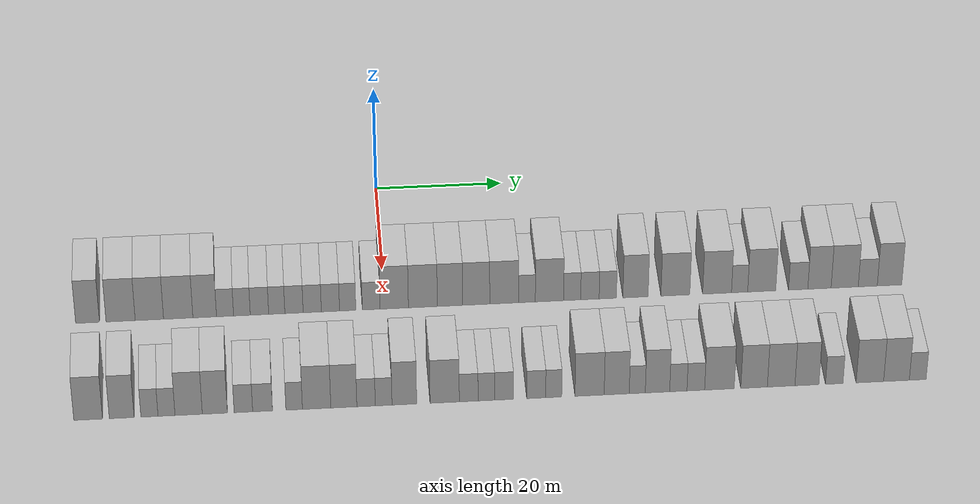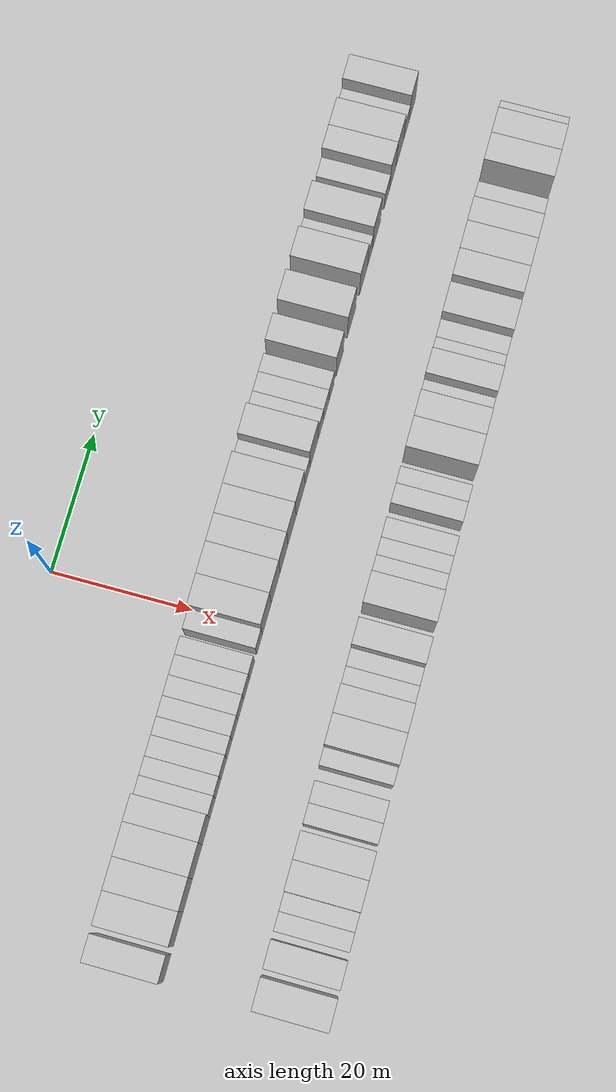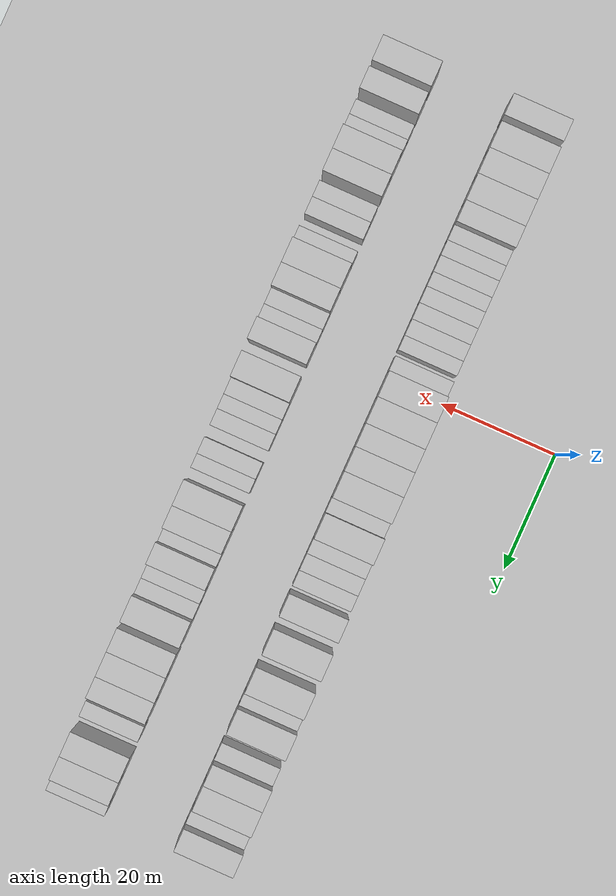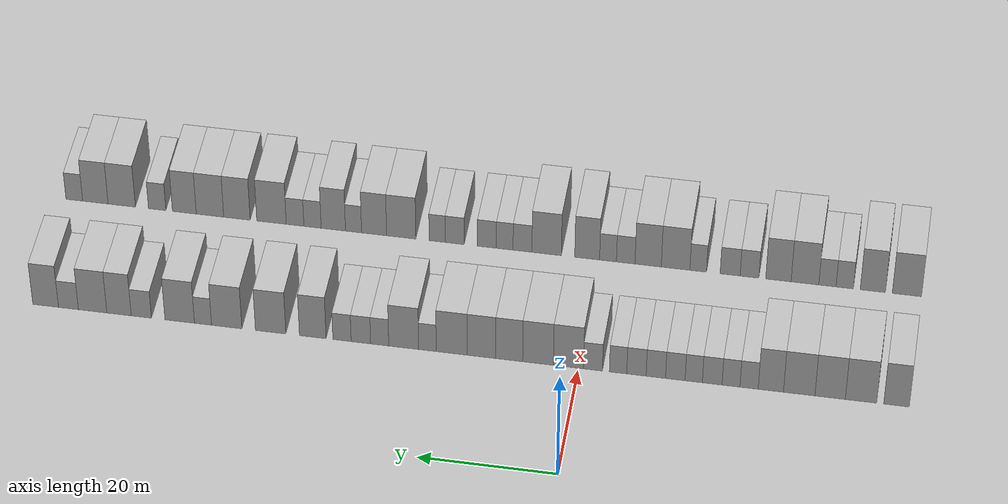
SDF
<sdf version="1.6">
 <world name="default">
  <include><name>ground_plane_1</name><uri>model://HANNAS_ground_plane</uri></include>
  <include>
   <name>ground_plane_2</name>
   <uri>model://HANNAS_ground_plane</uri>
   <pose>100 0 0  0 0 0</pose>
  </include>
  <model name="building_33">
   <static>1</static>
   <pose>25.0000 -45.6298 0 0.000000 0.000000 0.000000</pose>
   <link name="link">
    <pose>0 0 4.50 0 0 0</pose>
    <collision name="collision"><geometry><box><size>10.0000 3.6348 9.0000</size></box></geometry></collision>
    <visual name="visual">
     <cast_shadows>0</cast_shadows>
     <geometry><box><size>10.0000 3.6348 9.0000</size></box></geometry>
     <material>
      <script>
       <uri>model://HANNAS_wall/materials/scripts</uri>
       <uri>model://HANNAS_wall/materials/textures</uri>
       <name>vrc/HANNAS_wall</name>
      </script>
     </material>
    </visual>
   </link>
  </model>
  <model name="building_34">
   <static>1</static>
   <pose>25.0000 -40.5821 0 0.000000 0.000000 0.000000</pose>
   <link name="link">
    <pose>0 0 4.50 0 0 0</pose>
    <collision name="collision"><geometry><box><size>10.0000 4.4606 9.0000</size></box></geometry></collision>
    <visual name="visual">
     <cast_shadows>0</cast_shadows>
     <geometry><box><size>10.0000 4.4606 9.0000</size></box></geometry>
     <material>
      <script>
       <uri>model://HANNAS_wall/materials/scripts</uri>
       <uri>model://HANNAS_wall/materials/textures</uri>
       <name>vrc/HANNAS_wall</name>
      </script>
     </material>
    </visual>
   </link>
  </model>
  <model name="building_35">
   <static>1</static>
   <pose>25.0000 -36.1830 0 0.000000 0.000000 0.000000</pose>
   <link name="link">
    <pose>0 0 4.50 0 0 0</pose>
    <collision name="collision"><geometry><box><size>10.0000 4.3375 9.0000</size></box></geometry></collision>
    <visual name="visual">
     <cast_shadows>0</cast_shadows>
     <geometry><box><size>10.0000 4.3375 9.0000</size></box></geometry>
     <material>
      <script>
       <uri>model://HANNAS_wall/materials/scripts</uri>
       <uri>model://HANNAS_wall/materials/textures</uri>
       <name>vrc/HANNAS_wall</name>
      </script>
     </material>
    </visual>
   </link>
  </model>
  <model name="building_36">
   <static>1</static>
   <pose>25.0000 -31.7675 0 0.000000 0.000000 0.000000</pose>
   <link name="link">
    <pose>0 0 4.50 0 0 0</pose>
    <collision name="collision"><geometry><box><size>10.0000 4.4934 9.0000</size></box></geometry></collision>
    <visual name="visual">
     <cast_shadows>0</cast_shadows>
     <geometry><box><size>10.0000 4.4934 9.0000</size></box></geometry>
     <material>
      <script>
       <uri>model://HANNAS_wall/materials/scripts</uri>
       <uri>model://HANNAS_wall/materials/textures</uri>
       <name>vrc/HANNAS_wall</name>
      </script>
     </material>
    </visual>
   </link>
  </model>
  <model name="building_37">
   <static>1</static>
   <pose>25.0000 -27.7102 0 0.000000 0.000000 0.000000</pose>
   <link name="link">
    <pose>0 0 4.50 0 0 0</pose>
    <collision name="collision"><geometry><box><size>10.0000 3.6212 9.0000</size></box></geometry></collision>
    <visual name="visual">
     <cast_shadows>0</cast_shadows>
     <geometry><box><size>10.0000 3.6212 9.0000</size></box></geometry>
     <material>
      <script>
       <uri>model://HANNAS_wall/materials/scripts</uri>
       <uri>model://HANNAS_wall/materials/textures</uri>
       <name>vrc/HANNAS_wall</name>
      </script>
     </material>
    </visual>
   </link>
  </model>
  <model name="building_38">
   <static>1</static>
   <pose>25.0000 -24.5940 0 0.000000 0.000000 0.000000</pose>
   <link name="link">
    <pose>0 0 3.00 0 0 0</pose>
    <collision name="collision"><geometry><box><size>10.0000 2.6112 6.0000</size></box></geometry></collision>
    <visual name="visual">
     <cast_shadows>0</cast_shadows>
     <geometry><box><size>10.0000 2.6112 6.0000</size></box></geometry>
     <material>
      <script>
       <uri>model://HANNAS_wall/materials/scripts</uri>
       <uri>model://HANNAS_wall/materials/textures</uri>
       <name>vrc/HANNAS_wall</name>
      </script>
     </material>
    </visual>
   </link>
  </model>
  <model name="building_39">
   <static>1</static>
   <pose>25.0000 -22.0062 0 0.000000 0.000000 0.000000</pose>
   <link name="link">
    <pose>0 0 3.00 0 0 0</pose>
    <collision name="collision"><geometry><box><size>10.0000 2.5643 6.0000</size></box></geometry></collision>
    <visual name="visual">
     <cast_shadows>0</cast_shadows>
     <geometry><box><size>10.0000 2.5643 6.0000</size></box></geometry>
     <material>
      <script>
       <uri>model://HANNAS_wall/materials/scripts</uri>
       <uri>model://HANNAS_wall/materials/textures</uri>
       <name>vrc/HANNAS_wall</name>
      </script>
     </material>
    </visual>
   </link>
  </model>
  <model name="building_40">
   <static>1</static>
   <pose>25.0000 -19.3126 0 0.000000 0.000000 0.000000</pose>
   <link name="link">
    <pose>0 0 3.00 0 0 0</pose>
    <collision name="collision"><geometry><box><size>10.0000 2.8229 6.0000</size></box></geometry></collision>
    <visual name="visual">
     <cast_shadows>0</cast_shadows>
     <geometry><box><size>10.0000 2.8229 6.0000</size></box></geometry>
     <material>
      <script>
       <uri>model://HANNAS_wall/materials/scripts</uri>
       <uri>model://HANNAS_wall/materials/textures</uri>
       <name>vrc/HANNAS_wall</name>
      </script>
     </material>
    </visual>
   </link>
  </model>
  <model name="building_41">
   <static>1</static>
   <pose>25.0000 -16.6580 0 0.000000 0.000000 0.000000</pose>
   <link name="link">
    <pose>0 0 3.00 0 0 0</pose>
    <collision name="collision"><geometry><box><size>10.0000 2.4863 6.0000</size></box></geometry></collision>
    <visual name="visual">
     <cast_shadows>0</cast_shadows>
     <geometry><box><size>10.0000 2.4863 6.0000</size></box></geometry>
     <material>
      <script>
       <uri>model://HANNAS_wall/materials/scripts</uri>
       <uri>model://HANNAS_wall/materials/textures</uri>
       <name>vrc/HANNAS_wall</name>
      </script>
     </material>
    </visual>
   </link>
  </model>
  <model name="building_42">
   <static>1</static>
   <pose>25.0000 -14.0102 0 0.000000 0.000000 0.000000</pose>
   <link name="link">
    <pose>0 0 3.00 0 0 0</pose>
    <collision name="collision"><geometry><box><size>10.0000 2.8092 6.0000</size></box></geometry></collision>
    <visual name="visual">
     <cast_shadows>0</cast_shadows>
     <geometry><box><size>10.0000 2.8092 6.0000</size></box></geometry>
     <material>
      <script>
       <uri>model://HANNAS_wall/materials/scripts</uri>
       <uri>model://HANNAS_wall/materials/textures</uri>
       <name>vrc/HANNAS_wall</name>
      </script>
     </material>
    </visual>
   </link>
  </model>
  <model name="building_43">
   <static>1</static>
   <pose>25.0000 -11.2068 0 0.000000 0.000000 0.000000</pose>
   <link name="link">
    <pose>0 0 3.00 0 0 0</pose>
    <collision name="collision"><geometry><box><size>10.0000 2.7976 6.0000</size></box></geometry></collision>
    <visual name="visual">
     <cast_shadows>0</cast_shadows>
     <geometry><box><size>10.0000 2.7976 6.0000</size></box></geometry>
     <material>
      <script>
       <uri>model://HANNAS_wall/materials/scripts</uri>
       <uri>model://HANNAS_wall/materials/textures</uri>
       <name>vrc/HANNAS_wall</name>
      </script>
     </material>
    </visual>
   </link>
  </model>
  <model name="building_44">
   <static>1</static>
   <pose>25.0000 -8.4107 0 0.000000 0.000000 0.000000</pose>
   <link name="link">
    <pose>0 0 3.00 0 0 0</pose>
    <collision name="collision"><geometry><box><size>10.0000 2.7947 6.0000</size></box></geometry></collision>
    <visual name="visual">
     <cast_shadows>0</cast_shadows>
     <geometry><box><size>10.0000 2.7947 6.0000</size></box></geometry>
     <material>
      <script>
       <uri>model://HANNAS_wall/materials/scripts</uri>
       <uri>model://HANNAS_wall/materials/textures</uri>
       <name>vrc/HANNAS_wall</name>
      </script>
     </material>
    </visual>
   </link>
  </model>
  <model name="building_45">
   <static>1</static>
   <pose>25.0000 -5.7582 0 0.000000 0.000000 0.000000</pose>
   <link name="link">
    <pose>0 0 3.00 0 0 0</pose>
    <collision name="collision"><geometry><box><size>10.0000 2.5102 6.0000</size></box></geometry></collision>
    <visual name="visual">
     <cast_shadows>0</cast_shadows>
     <geometry><box><size>10.0000 2.5102 6.0000</size></box></geometry>
     <material>
      <script>
       <uri>model://HANNAS_wall/materials/scripts</uri>
       <uri>model://HANNAS_wall/materials/textures</uri>
       <name>vrc/HANNAS_wall</name>
      </script>
     </material>
    </visual>
   </link>
  </model>
  <model name="building_46">
   <static>1</static>
   <pose>25.0000 -2.1338 0 0.000000 0.000000 0.000000</pose>
   <link name="link">
    <pose>0 0 3.00 0 0 0</pose>
    <collision name="collision"><geometry><box><size>10.0000 2.7386 6.0000</size></box></geometry></collision>
    <visual name="visual">
     <cast_shadows>0</cast_shadows>
     <geometry><box><size>10.0000 2.7386 6.0000</size></box></geometry>
     <material>
      <script>
       <uri>model://HANNAS_wall/materials/scripts</uri>
       <uri>model://HANNAS_wall/materials/textures</uri>
       <name>vrc/HANNAS_wall</name>
      </script>
     </material>
    </visual>
   </link>
  </model>
  <model name="building_47">
   <static>1</static>
   <pose>25.0000 1.4138 0 0.000000 0.000000 0.000000</pose>
   <link name="link">
    <pose>0 0 4.50 0 0 0</pose>
    <collision name="collision"><geometry><box><size>10.0000 4.3567 9.0000</size></box></geometry></collision>
    <visual name="visual">
     <cast_shadows>0</cast_shadows>
     <geometry><box><size>10.0000 4.3567 9.0000</size></box></geometry>
     <material>
      <script>
       <uri>model://HANNAS_wall/materials/scripts</uri>
       <uri>model://HANNAS_wall/materials/textures</uri>
       <name>vrc/HANNAS_wall</name>
      </script>
     </material>
    </visual>
   </link>
  </model>
  <model name="building_48">
   <static>1</static>
   <pose>25.0000 5.8222 0 0.000000 0.000000 0.000000</pose>
   <link name="link">
    <pose>0 0 4.50 0 0 0</pose>
    <collision name="collision"><geometry><box><size>10.0000 4.4599 9.0000</size></box></geometry></collision>
    <visual name="visual">
     <cast_shadows>0</cast_shadows>
     <geometry><box><size>10.0000 4.4599 9.0000</size></box></geometry>
     <material>
      <script>
       <uri>model://HANNAS_wall/materials/scripts</uri>
       <uri>model://HANNAS_wall/materials/textures</uri>
       <name>vrc/HANNAS_wall</name>
      </script>
     </material>
    </visual>
   </link>
  </model>
  <model name="building_49">
   <static>1</static>
   <pose>25.0000 10.0087 0 0.000000 0.000000 0.000000</pose>
   <link name="link">
    <pose>0 0 4.50 0 0 0</pose>
    <collision name="collision"><geometry><box><size>10.0000 3.9131 9.0000</size></box></geometry></collision>
    <visual name="visual">
     <cast_shadows>0</cast_shadows>
     <geometry><box><size>10.0000 3.9131 9.0000</size></box></geometry>
     <material>
      <script>
       <uri>model://HANNAS_wall/materials/scripts</uri>
       <uri>model://HANNAS_wall/materials/textures</uri>
       <name>vrc/HANNAS_wall</name>
      </script>
     </material>
    </visual>
   </link>
  </model>
  <model name="building_50">
   <static>1</static>
   <pose>25.0000 14.0520 0 0.000000 0.000000 0.000000</pose>
   <link name="link">
    <pose>0 0 4.50 0 0 0</pose>
    <collision name="collision"><geometry><box><size>10.0000 4.1734 9.0000</size></box></geometry></collision>
    <visual name="visual">
     <cast_shadows>0</cast_shadows>
     <geometry><box><size>10.0000 4.1734 9.0000</size></box></geometry>
     <material>
      <script>
       <uri>model://HANNAS_wall/materials/scripts</uri>
       <uri>model://HANNAS_wall/materials/textures</uri>
       <name>vrc/HANNAS_wall</name>
      </script>
     </material>
    </visual>
   </link>
  </model>
  <model name="building_51">
   <static>1</static>
   <pose>25.0000 18.3818 0 0.000000 0.000000 0.000000</pose>
   <link name="link">
    <pose>0 0 4.50 0 0 0</pose>
    <collision name="collision"><geometry><box><size>10.0000 4.4863 9.0000</size></box></geometry></collision>
    <visual name="visual">
     <cast_shadows>0</cast_shadows>
     <geometry><box><size>10.0000 4.4863 9.0000</size></box></geometry>
     <material>
      <script>
       <uri>model://HANNAS_wall/materials/scripts</uri>
       <uri>model://HANNAS_wall/materials/textures</uri>
       <name>vrc/HANNAS_wall</name>
      </script>
     </material>
    </visual>
   </link>
  </model>
  <model name="building_52">
   <static>1</static>
   <pose>25.0000 21.9062 0 0.000000 0.000000 0.000000</pose>
   <link name="link">
    <pose>0 0 3.00 0 0 0</pose>
    <collision name="collision"><geometry><box><size>10.0000 2.5625 6.0000</size></box></geometry></collision>
    <visual name="visual">
     <cast_shadows>0</cast_shadows>
     <geometry><box><size>10.0000 2.5625 6.0000</size></box></geometry>
     <material>
      <script>
       <uri>model://HANNAS_wall/materials/scripts</uri>
       <uri>model://HANNAS_wall/materials/textures</uri>
       <name>vrc/HANNAS_wall</name>
      </script>
     </material>
    </visual>
   </link>
  </model>
  <model name="building_53">
   <static>1</static>
   <pose>25.0000 25.3795 0 0.000000 0.000000 0.000000</pose>
   <link name="link">
    <pose>0 0 4.50 0 0 0</pose>
    <collision name="collision"><geometry><box><size>10.0000 4.3841 9.0000</size></box></geometry></collision>
    <visual name="visual">
     <cast_shadows>0</cast_shadows>
     <geometry><box><size>10.0000 4.3841 9.0000</size></box></geometry>
     <material>
      <script>
       <uri>model://HANNAS_wall/materials/scripts</uri>
       <uri>model://HANNAS_wall/materials/textures</uri>
       <name>vrc/HANNAS_wall</name>
      </script>
     </material>
    </visual>
   </link>
  </model>
  <model name="building_54">
   <static>1</static>
   <pose>25.0000 28.8932 0 0.000000 0.000000 0.000000</pose>
   <link name="link">
    <pose>0 0 3.00 0 0 0</pose>
    <collision name="collision"><geometry><box><size>10.0000 2.6431 6.0000</size></box></geometry></collision>
    <visual name="visual">
     <cast_shadows>0</cast_shadows>
     <geometry><box><size>10.0000 2.6431 6.0000</size></box></geometry>
     <material>
      <script>
       <uri>model://HANNAS_wall/materials/scripts</uri>
       <uri>model://HANNAS_wall/materials/textures</uri>
       <name>vrc/HANNAS_wall</name>
      </script>
     </material>
    </visual>
   </link>
  </model>
  <model name="building_55">
   <static>1</static>
   <pose>25.0000 31.6414 0 0.000000 0.000000 0.000000</pose>
   <link name="link">
    <pose>0 0 3.00 0 0 0</pose>
    <collision name="collision"><geometry><box><size>10.0000 2.8534 6.0000</size></box></geometry></collision>
    <visual name="visual">
     <cast_shadows>0</cast_shadows>
     <geometry><box><size>10.0000 2.8534 6.0000</size></box></geometry>
     <material>
      <script>
       <uri>model://HANNAS_wall/materials/scripts</uri>
       <uri>model://HANNAS_wall/materials/textures</uri>
       <name>vrc/HANNAS_wall</name>
      </script>
     </material>
    </visual>
   </link>
  </model>
  <model name="building_56">
   <static>1</static>
   <pose>25.0000 34.4095 0 0.000000 0.000000 0.000000</pose>
   <link name="link">
    <pose>0 0 3.00 0 0 0</pose>
    <collision name="collision"><geometry><box><size>10.0000 2.6827 6.0000</size></box></geometry></collision>
    <visual name="visual">
     <cast_shadows>0</cast_shadows>
     <geometry><box><size>10.0000 2.6827 6.0000</size></box></geometry>
     <material>
      <script>
       <uri>model://HANNAS_wall/materials/scripts</uri>
       <uri>model://HANNAS_wall/materials/textures</uri>
       <name>vrc/HANNAS_wall</name>
      </script>
     </material>
    </visual>
   </link>
  </model>
  <model name="building_57">
   <static>1</static>
   <pose>25.0000 38.7061 0 0.000000 0.000000 0.000000</pose>
   <link name="link">
    <pose>0 0 4.50 0 0 0</pose>
    <collision name="collision"><geometry><box><size>10.0000 3.9105 9.0000</size></box></geometry></collision>
    <visual name="visual">
     <cast_shadows>0</cast_shadows>
     <geometry><box><size>10.0000 3.9105 9.0000</size></box></geometry>
     <material>
      <script>
       <uri>model://HANNAS_wall/materials/scripts</uri>
       <uri>model://HANNAS_wall/materials/textures</uri>
       <name>vrc/HANNAS_wall</name>
      </script>
     </material>
    </visual>
   </link>
  </model>
  <model name="building_58">
   <static>1</static>
   <pose>25.0000 44.8998 0 0.000000 0.000000 0.000000</pose>
   <link name="link">
    <pose>0 0 4.50 0 0 0</pose>
    <collision name="collision"><geometry><box><size>10.0000 4.4768 9.0000</size></box></geometry></collision>
    <visual name="visual">
     <cast_shadows>0</cast_shadows>
     <geometry><box><size>10.0000 4.4768 9.0000</size></box></geometry>
     <material>
      <script>
       <uri>model://HANNAS_wall/materials/scripts</uri>
       <uri>model://HANNAS_wall/materials/textures</uri>
       <name>vrc/HANNAS_wall</name>
      </script>
     </material>
    </visual>
   </link>
  </model>
  <model name="building_59">
   <static>1</static>
   <pose>25.0000 51.3808 0 0.000000 0.000000 0.000000</pose>
   <link name="link">
    <pose>0 0 4.50 0 0 0</pose>
    <collision name="collision"><geometry><box><size>10.0000 4.4853 9.0000</size></box></geometry></collision>
    <visual name="visual">
     <cast_shadows>0</cast_shadows>
     <geometry><box><size>10.0000 4.4853 9.0000</size></box></geometry>
     <material>
      <script>
       <uri>model://HANNAS_wall/materials/scripts</uri>
       <uri>model://HANNAS_wall/materials/textures</uri>
       <name>vrc/HANNAS_wall</name>
      </script>
     </material>
    </visual>
   </link>
  </model>
  <model name="building_60">
   <static>1</static>
   <pose>25.0000 54.8837 0 0.000000 0.000000 0.000000</pose>
   <link name="link">
    <pose>0 0 3.00 0 0 0</pose>
    <collision name="collision"><geometry><box><size>10.0000 2.5203 6.0000</size></box></geometry></collision>
    <visual name="visual">
     <cast_shadows>0</cast_shadows>
     <geometry><box><size>10.0000 2.5203 6.0000</size></box></geometry>
     <material>
      <script>
       <uri>model://HANNAS_wall/materials/scripts</uri>
       <uri>model://HANNAS_wall/materials/textures</uri>
       <name>vrc/HANNAS_wall</name>
      </script>
     </material>
    </visual>
   </link>
  </model>
  <model name="building_61">
   <static>1</static>
   <pose>25.0000 58.3285 0 0.000000 0.000000 0.000000</pose>
   <link name="link">
    <pose>0 0 4.50 0 0 0</pose>
    <collision name="collision"><geometry><box><size>10.0000 4.3693 9.0000</size></box></geometry></collision>
    <visual name="visual">
     <cast_shadows>0</cast_shadows>
     <geometry><box><size>10.0000 4.3693 9.0000</size></box></geometry>
     <material>
      <script>
       <uri>model://HANNAS_wall/materials/scripts</uri>
       <uri>model://HANNAS_wall/materials/textures</uri>
       <name>vrc/HANNAS_wall</name>
      </script>
     </material>
    </visual>
   </link>
  </model>
  <model name="building_62">
   <static>1</static>
   <pose>25.0000 64.0127 0 0.000000 0.000000 0.000000</pose>
   <link name="link">
    <pose>0 0 3.00 0 0 0</pose>
    <collision name="collision"><geometry><box><size>10.0000 2.9990 6.0000</size></box></geometry></collision>
    <visual name="visual">
     <cast_shadows>0</cast_shadows>
     <geometry><box><size>10.0000 2.9990 6.0000</size></box></geometry>
     <material>
      <script>
       <uri>model://HANNAS_wall/materials/scripts</uri>
       <uri>model://HANNAS_wall/materials/textures</uri>
       <name>vrc/HANNAS_wall</name>
      </script>
     </material>
    </visual>
   </link>
  </model>
  <model name="building_63">
   <static>1</static>
   <pose>25.0000 67.3272 0 0.000000 0.000000 0.000000</pose>
   <link name="link">
    <pose>0 0 4.50 0 0 0</pose>
    <collision name="collision"><geometry><box><size>10.0000 3.6300 9.0000</size></box></geometry></collision>
    <visual name="visual">
     <cast_shadows>0</cast_shadows>
     <geometry><box><size>10.0000 3.6300 9.0000</size></box></geometry>
     <material>
      <script>
       <uri>model://HANNAS_wall/materials/scripts</uri>
       <uri>model://HANNAS_wall/materials/textures</uri>
       <name>vrc/HANNAS_wall</name>
      </script>
     </material>
    </visual>
   </link>
  </model>
  <model name="building_64">
   <static>1</static>
   <pose>25.0000 71.2593 0 0.000000 0.000000 0.000000</pose>
   <link name="link">
    <pose>0 0 4.50 0 0 0</pose>
    <collision name="collision"><geometry><box><size>10.0000 4.2343 9.0000</size></box></geometry></collision>
    <visual name="visual">
     <cast_shadows>0</cast_shadows>
     <geometry><box><size>10.0000 4.2343 9.0000</size></box></geometry>
     <material>
      <script>
       <uri>model://HANNAS_wall/materials/scripts</uri>
       <uri>model://HANNAS_wall/materials/textures</uri>
       <name>vrc/HANNAS_wall</name>
      </script>
     </material>
    </visual>
   </link>
  </model>
  <model name="building_65">
   <static>1</static>
   <pose>25.0000 74.8635 0 0.000000 0.000000 0.000000</pose>
   <link name="link">
    <pose>0 0 3.00 0 0 0</pose>
    <collision name="collision"><geometry><box><size>10.0000 2.9741 6.0000</size></box></geometry></collision>
    <visual name="visual">
     <cast_shadows>0</cast_shadows>
     <geometry><box><size>10.0000 2.9741 6.0000</size></box></geometry>
     <material>
      <script>
       <uri>model://HANNAS_wall/materials/scripts</uri>
       <uri>model://HANNAS_wall/materials/textures</uri>
       <name>vrc/HANNAS_wall</name>
      </script>
     </material>
    </visual>
   </link>
  </model>
  <model name="building_66">
   <static>1</static>
   <pose>25.0000 78.2609 0 0.000000 0.000000 0.000000</pose>
   <link name="link">
    <pose>0 0 4.50 0 0 0</pose>
    <collision name="collision"><geometry><box><size>10.0000 3.8207 9.0000</size></box></geometry></collision>
    <visual name="visual">
     <cast_shadows>0</cast_shadows>
     <geometry><box><size>10.0000 3.8207 9.0000</size></box></geometry>
     <material>
      <script>
       <uri>model://HANNAS_wall/materials/scripts</uri>
       <uri>model://HANNAS_wall/materials/textures</uri>
       <name>vrc/HANNAS_wall</name>
      </script>
     </material>
    </visual>
   </link>
  </model>
  <model name="building_140">
   <static>1</static>
   <pose>47.0000 -45.3055 0 0.000000 0.000000 0.000000</pose>
   <link name="link">
    <pose>0 0 4.50 0 0 0</pose>
    <collision name="collision"><geometry><box><size>10.0000 4.2631 9.0000</size></box></geometry></collision>
    <visual name="visual">
     <cast_shadows>0</cast_shadows>
     <geometry><box><size>10.0000 4.2631 9.0000</size></box></geometry>
     <material>
      <script>
       <uri>model://HANNAS_wall/materials/scripts</uri>
       <uri>model://HANNAS_wall/materials/textures</uri>
       <name>vrc/HANNAS_wall</name>
      </script>
     </material>
    </visual>
   </link>
  </model>
  <model name="building_141">
   <static>1</static>
   <pose>47.0000 -40.3285 0 0.000000 0.000000 0.000000</pose>
   <link name="link">
    <pose>0 0 4.50 0 0 0</pose>
    <collision name="collision"><geometry><box><size>10.0000 3.6909 9.0000</size></box></geometry></collision>
    <visual name="visual">
     <cast_shadows>0</cast_shadows>
     <geometry><box><size>10.0000 3.6909 9.0000</size></box></geometry>
     <material>
      <script>
       <uri>model://HANNAS_wall/materials/scripts</uri>
       <uri>model://HANNAS_wall/materials/textures</uri>
       <name>vrc/HANNAS_wall</name>
      </script>
     </material>
    </visual>
   </link>
  </model>
  <model name="building_142">
   <static>1</static>
   <pose>47.0000 -36.2140 0 0.000000 0.000000 0.000000</pose>
   <link name="link">
    <pose>0 0 3.00 0 0 0</pose>
    <collision name="collision"><geometry><box><size>10.0000 2.5381 6.0000</size></box></geometry></collision>
    <visual name="visual">
     <cast_shadows>0</cast_shadows>
     <geometry><box><size>10.0000 2.5381 6.0000</size></box></geometry>
     <material>
      <script>
       <uri>model://HANNAS_wall/materials/scripts</uri>
       <uri>model://HANNAS_wall/materials/textures</uri>
       <name>vrc/HANNAS_wall</name>
      </script>
     </material>
    </visual>
   </link>
  </model>
  <model name="building_143">
   <static>1</static>
   <pose>47.0000 -33.6807 0 0.000000 0.000000 0.000000</pose>
   <link name="link">
    <pose>0 0 3.00 0 0 0</pose>
    <collision name="collision"><geometry><box><size>10.0000 2.5285 6.0000</size></box></geometry></collision>
    <visual name="visual">
     <cast_shadows>0</cast_shadows>
     <geometry><box><size>10.0000 2.5285 6.0000</size></box></geometry>
     <material>
      <script>
       <uri>model://HANNAS_wall/materials/scripts</uri>
       <uri>model://HANNAS_wall/materials/textures</uri>
       <name>vrc/HANNAS_wall</name>
      </script>
     </material>
    </visual>
   </link>
  </model>
  <model name="building_144">
   <static>1</static>
   <pose>47.0000 -30.3825 0 0.000000 0.000000 0.000000</pose>
   <link name="link">
    <pose>0 0 4.50 0 0 0</pose>
    <collision name="collision"><geometry><box><size>10.0000 4.0681 9.0000</size></box></geometry></collision>
    <visual name="visual">
     <cast_shadows>0</cast_shadows>
     <geometry><box><size>10.0000 4.0681 9.0000</size></box></geometry>
     <material>
      <script>
       <uri>model://HANNAS_wall/materials/scripts</uri>
       <uri>model://HANNAS_wall/materials/textures</uri>
       <name>vrc/HANNAS_wall</name>
      </script>
     </material>
    </visual>
   </link>
  </model>
  <model name="building_145">
   <static>1</static>
   <pose>47.0000 -26.4804 0 0.000000 0.000000 0.000000</pose>
   <link name="link">
    <pose>0 0 4.50 0 0 0</pose>
    <collision name="collision"><geometry><box><size>10.0000 3.7360 9.0000</size></box></geometry></collision>
    <visual name="visual">
     <cast_shadows>0</cast_shadows>
     <geometry><box><size>10.0000 3.7360 9.0000</size></box></geometry>
     <material>
      <script>
       <uri>model://HANNAS_wall/materials/scripts</uri>
       <uri>model://HANNAS_wall/materials/textures</uri>
       <name>vrc/HANNAS_wall</name>
      </script>
     </material>
    </visual>
   </link>
  </model>
  <model name="building_146">
   <static>1</static>
   <pose>47.0000 -22.2312 0 0.000000 0.000000 0.000000</pose>
   <link name="link">
    <pose>0 0 3.00 0 0 0</pose>
    <collision name="collision"><geometry><box><size>10.0000 2.7624 6.0000</size></box></geometry></collision>
    <visual name="visual">
     <cast_shadows>0</cast_shadows>
     <geometry><box><size>10.0000 2.7624 6.0000</size></box></geometry>
     <material>
      <script>
       <uri>model://HANNAS_wall/materials/scripts</uri>
       <uri>model://HANNAS_wall/materials/textures</uri>
       <name>vrc/HANNAS_wall</name>
      </script>
     </material>
    </visual>
   </link>
  </model>
  <model name="building_147">
   <static>1</static>
   <pose>47.0000 -19.3714 0 0.000000 0.000000 0.000000</pose>
   <link name="link">
    <pose>0 0 3.00 0 0 0</pose>
    <collision name="collision"><geometry><box><size>10.0000 2.9572 6.0000</size></box></geometry></collision>
    <visual name="visual">
     <cast_shadows>0</cast_shadows>
     <geometry><box><size>10.0000 2.9572 6.0000</size></box></geometry>
     <material>
      <script>
       <uri>model://HANNAS_wall/materials/scripts</uri>
       <uri>model://HANNAS_wall/materials/textures</uri>
       <name>vrc/HANNAS_wall</name>
      </script>
     </material>
    </visual>
   </link>
  </model>
  <model name="building_148">
   <static>1</static>
   <pose>47.0000 -14.6608 0 0.000000 0.000000 0.000000</pose>
   <link name="link">
    <pose>0 0 3.00 0 0 0</pose>
    <collision name="collision"><geometry><box><size>10.0000 2.4640 6.0000</size></box></geometry></collision>
    <visual name="visual">
     <cast_shadows>0</cast_shadows>
     <geometry><box><size>10.0000 2.4640 6.0000</size></box></geometry>
     <material>
      <script>
       <uri>model://HANNAS_wall/materials/scripts</uri>
       <uri>model://HANNAS_wall/materials/textures</uri>
       <name>vrc/HANNAS_wall</name>
      </script>
     </material>
    </visual>
   </link>
  </model>
  <model name="building_149">
   <static>1</static>
   <pose>47.0000 -11.3106 0 0.000000 0.000000 0.000000</pose>
   <link name="link">
    <pose>0 0 4.50 0 0 0</pose>
    <collision name="collision"><geometry><box><size>10.0000 4.2364 9.0000</size></box></geometry></collision>
    <visual name="visual">
     <cast_shadows>0</cast_shadows>
     <geometry><box><size>10.0000 4.2364 9.0000</size></box></geometry>
     <material>
      <script>
       <uri>model://HANNAS_wall/materials/scripts</uri>
       <uri>model://HANNAS_wall/materials/textures</uri>
       <name>vrc/HANNAS_wall</name>
      </script>
     </material>
    </visual>
   </link>
  </model>
  <model name="building_150">
   <static>1</static>
   <pose>47.0000 -7.2468 0 0.000000 0.000000 0.000000</pose>
   <link name="link">
    <pose>0 0 4.50 0 0 0</pose>
    <collision name="collision"><geometry><box><size>10.0000 3.8912 9.0000</size></box></geometry></collision>
    <visual name="visual">
     <cast_shadows>0</cast_shadows>
     <geometry><box><size>10.0000 3.8912 9.0000</size></box></geometry>
     <material>
      <script>
       <uri>model://HANNAS_wall/materials/scripts</uri>
       <uri>model://HANNAS_wall/materials/textures</uri>
       <name>vrc/HANNAS_wall</name>
      </script>
     </material>
    </visual>
   </link>
  </model>
  <model name="building_151">
   <static>1</static>
   <pose>47.0000 -3.9229 0 0.000000 0.000000 0.000000</pose>
   <link name="link">
    <pose>0 0 3.00 0 0 0</pose>
    <collision name="collision"><geometry><box><size>10.0000 2.7566 6.0000</size></box></geometry></collision>
    <visual name="visual">
     <cast_shadows>0</cast_shadows>
     <geometry><box><size>10.0000 2.7566 6.0000</size></box></geometry>
     <material>
      <script>
       <uri>model://HANNAS_wall/materials/scripts</uri>
       <uri>model://HANNAS_wall/materials/textures</uri>
       <name>vrc/HANNAS_wall</name>
      </script>
     </material>
    </visual>
   </link>
  </model>
  <model name="building_152">
   <static>1</static>
   <pose>47.0000 -1.2958 0 0.000000 0.000000 0.000000</pose>
   <link name="link">
    <pose>0 0 3.00 0 0 0</pose>
    <collision name="collision"><geometry><box><size>10.0000 2.4978 6.0000</size></box></geometry></collision>
    <visual name="visual">
     <cast_shadows>0</cast_shadows>
     <geometry><box><size>10.0000 2.4978 6.0000</size></box></geometry>
     <material>
      <script>
       <uri>model://HANNAS_wall/materials/scripts</uri>
       <uri>model://HANNAS_wall/materials/textures</uri>
       <name>vrc/HANNAS_wall</name>
      </script>
     </material>
    </visual>
   </link>
  </model>
  <model name="building_153">
   <static>1</static>
   <pose>47.0000 1.8020 0 0.000000 0.000000 0.000000</pose>
   <link name="link">
    <pose>0 0 4.50 0 0 0</pose>
    <collision name="collision"><geometry><box><size>10.0000 3.6977 9.0000</size></box></geometry></collision>
    <visual name="visual">
     <cast_shadows>0</cast_shadows>
     <geometry><box><size>10.0000 3.6977 9.0000</size></box></geometry>
     <material>
      <script>
       <uri>model://HANNAS_wall/materials/scripts</uri>
       <uri>model://HANNAS_wall/materials/textures</uri>
       <name>vrc/HANNAS_wall</name>
      </script>
     </material>
    </visual>
   </link>
  </model>
  <model name="building_154">
   <static>1</static>
   <pose>47.0000 7.8423 0 0.000000 0.000000 0.000000</pose>
   <link name="link">
    <pose>0 0 4.50 0 0 0</pose>
    <collision name="collision"><geometry><box><size>10.0000 4.3829 9.0000</size></box></geometry></collision>
    <visual name="visual">
     <cast_shadows>0</cast_shadows>
     <geometry><box><size>10.0000 4.3829 9.0000</size></box></geometry>
     <material>
      <script>
       <uri>model://HANNAS_wall/materials/scripts</uri>
       <uri>model://HANNAS_wall/materials/textures</uri>
       <name>vrc/HANNAS_wall</name>
      </script>
     </material>
    </visual>
   </link>
  </model>
  <model name="building_155">
   <static>1</static>
   <pose>47.0000 11.4386 0 0.000000 0.000000 0.000000</pose>
   <link name="link">
    <pose>0 0 3.00 0 0 0</pose>
    <collision name="collision"><geometry><box><size>10.0000 2.8098 6.0000</size></box></geometry></collision>
    <visual name="visual">
     <cast_shadows>0</cast_shadows>
     <geometry><box><size>10.0000 2.8098 6.0000</size></box></geometry>
     <material>
      <script>
       <uri>model://HANNAS_wall/materials/scripts</uri>
       <uri>model://HANNAS_wall/materials/textures</uri>
       <name>vrc/HANNAS_wall</name>
      </script>
     </material>
    </visual>
   </link>
  </model>
  <model name="building_156">
   <static>1</static>
   <pose>47.0000 14.0869 0 0.000000 0.000000 0.000000</pose>
   <link name="link">
    <pose>0 0 3.00 0 0 0</pose>
    <collision name="collision"><geometry><box><size>10.0000 2.4867 6.0000</size></box></geometry></collision>
    <visual name="visual">
     <cast_shadows>0</cast_shadows>
     <geometry><box><size>10.0000 2.4867 6.0000</size></box></geometry>
     <material>
      <script>
       <uri>model://HANNAS_wall/materials/scripts</uri>
       <uri>model://HANNAS_wall/materials/textures</uri>
       <name>vrc/HANNAS_wall</name>
      </script>
     </material>
    </visual>
   </link>
  </model>
  <model name="building_157">
   <static>1</static>
   <pose>47.0000 16.7433 0 0.000000 0.000000 0.000000</pose>
   <link name="link">
    <pose>0 0 3.00 0 0 0</pose>
    <collision name="collision"><geometry><box><size>10.0000 2.8260 6.0000</size></box></geometry></collision>
    <visual name="visual">
     <cast_shadows>0</cast_shadows>
     <geometry><box><size>10.0000 2.8260 6.0000</size></box></geometry>
     <material>
      <script>
       <uri>model://HANNAS_wall/materials/scripts</uri>
       <uri>model://HANNAS_wall/materials/textures</uri>
       <name>vrc/HANNAS_wall</name>
      </script>
     </material>
    </visual>
   </link>
  </model>
  <model name="building_158">
   <static>1</static>
   <pose>47.0000 21.5776 0 0.000000 0.000000 0.000000</pose>
   <link name="link">
    <pose>0 0 3.00 0 0 0</pose>
    <collision name="collision"><geometry><box><size>10.0000 2.8427 6.0000</size></box></geometry></collision>
    <visual name="visual">
     <cast_shadows>0</cast_shadows>
     <geometry><box><size>10.0000 2.8427 6.0000</size></box></geometry>
     <material>
      <script>
       <uri>model://HANNAS_wall/materials/scripts</uri>
       <uri>model://HANNAS_wall/materials/textures</uri>
       <name>vrc/HANNAS_wall</name>
      </script>
     </material>
    </visual>
   </link>
  </model>
  <model name="building_159">
   <static>1</static>
   <pose>47.0000 24.2037 0 0.000000 0.000000 0.000000</pose>
   <link name="link">
    <pose>0 0 3.00 0 0 0</pose>
    <collision name="collision"><geometry><box><size>10.0000 2.4095 6.0000</size></box></geometry></collision>
    <visual name="visual">
     <cast_shadows>0</cast_shadows>
     <geometry><box><size>10.0000 2.4095 6.0000</size></box></geometry>
     <material>
      <script>
       <uri>model://HANNAS_wall/materials/scripts</uri>
       <uri>model://HANNAS_wall/materials/textures</uri>
       <name>vrc/HANNAS_wall</name>
      </script>
     </material>
    </visual>
   </link>
  </model>
  <model name="building_160">
   <static>1</static>
   <pose>47.0000 29.6021 0 0.000000 0.000000 0.000000</pose>
   <link name="link">
    <pose>0 0 4.50 0 0 0</pose>
    <collision name="collision"><geometry><box><size>10.0000 4.3873 9.0000</size></box></geometry></collision>
    <visual name="visual">
     <cast_shadows>0</cast_shadows>
     <geometry><box><size>10.0000 4.3873 9.0000</size></box></geometry>
     <material>
      <script>
       <uri>model://HANNAS_wall/materials/scripts</uri>
       <uri>model://HANNAS_wall/materials/textures</uri>
       <name>vrc/HANNAS_wall</name>
      </script>
     </material>
    </visual>
   </link>
  </model>
  <model name="building_161">
   <static>1</static>
   <pose>47.0000 33.6831 0 0.000000 0.000000 0.000000</pose>
   <link name="link">
    <pose>0 0 4.50 0 0 0</pose>
    <collision name="collision"><geometry><box><size>10.0000 3.7747 9.0000</size></box></geometry></collision>
    <visual name="visual">
     <cast_shadows>0</cast_shadows>
     <geometry><box><size>10.0000 3.7747 9.0000</size></box></geometry>
     <material>
      <script>
       <uri>model://HANNAS_wall/materials/scripts</uri>
       <uri>model://HANNAS_wall/materials/textures</uri>
       <name>vrc/HANNAS_wall</name>
      </script>
     </material>
    </visual>
   </link>
  </model>
  <model name="building_162">
   <static>1</static>
   <pose>47.0000 36.7798 0 0.000000 0.000000 0.000000</pose>
   <link name="link">
    <pose>0 0 3.00 0 0 0</pose>
    <collision name="collision"><geometry><box><size>10.0000 2.4188 6.0000</size></box></geometry></collision>
    <visual name="visual">
     <cast_shadows>0</cast_shadows>
     <geometry><box><size>10.0000 2.4188 6.0000</size></box></geometry>
     <material>
      <script>
       <uri>model://HANNAS_wall/materials/scripts</uri>
       <uri>model://HANNAS_wall/materials/textures</uri>
       <name>vrc/HANNAS_wall</name>
      </script>
     </material>
    </visual>
   </link>
  </model>
  <model name="building_163">
   <static>1</static>
   <pose>47.0000 39.8288 0 0.000000 0.000000 0.000000</pose>
   <link name="link">
    <pose>0 0 4.50 0 0 0</pose>
    <collision name="collision"><geometry><box><size>10.0000 3.6791 9.0000</size></box></geometry></collision>
    <visual name="visual">
     <cast_shadows>0</cast_shadows>
     <geometry><box><size>10.0000 3.6791 9.0000</size></box></geometry>
     <material>
      <script>
       <uri>model://HANNAS_wall/materials/scripts</uri>
       <uri>model://HANNAS_wall/materials/textures</uri>
       <name>vrc/HANNAS_wall</name>
      </script>
     </material>
    </visual>
   </link>
  </model>
  <model name="building_164">
   <static>1</static>
   <pose>47.0000 42.9722 0 0.000000 0.000000 0.000000</pose>
   <link name="link">
    <pose>0 0 3.00 0 0 0</pose>
    <collision name="collision"><geometry><box><size>10.0000 2.6078 6.0000</size></box></geometry></collision>
    <visual name="visual">
     <cast_shadows>0</cast_shadows>
     <geometry><box><size>10.0000 2.6078 6.0000</size></box></geometry>
     <material>
      <script>
       <uri>model://HANNAS_wall/materials/scripts</uri>
       <uri>model://HANNAS_wall/materials/textures</uri>
       <name>vrc/HANNAS_wall</name>
      </script>
     </material>
    </visual>
   </link>
  </model>
  <model name="building_165">
   <static>1</static>
   <pose>47.0000 45.6084 0 0.000000 0.000000 0.000000</pose>
   <link name="link">
    <pose>0 0 3.00 0 0 0</pose>
    <collision name="collision"><geometry><box><size>10.0000 2.6644 6.0000</size></box></geometry></collision>
    <visual name="visual">
     <cast_shadows>0</cast_shadows>
     <geometry><box><size>10.0000 2.6644 6.0000</size></box></geometry>
     <material>
      <script>
       <uri>model://HANNAS_wall/materials/scripts</uri>
       <uri>model://HANNAS_wall/materials/textures</uri>
       <name>vrc/HANNAS_wall</name>
      </script>
     </material>
    </visual>
   </link>
  </model>
  <model name="building_166">
   <static>1</static>
   <pose>47.0000 49.1727 0 0.000000 0.000000 0.000000</pose>
   <link name="link">
    <pose>0 0 4.50 0 0 0</pose>
    <collision name="collision"><geometry><box><size>10.0000 4.4644 9.0000</size></box></geometry></collision>
    <visual name="visual">
     <cast_shadows>0</cast_shadows>
     <geometry><box><size>10.0000 4.4644 9.0000</size></box></geometry>
     <material>
      <script>
       <uri>model://HANNAS_wall/materials/scripts</uri>
       <uri>model://HANNAS_wall/materials/textures</uri>
       <name>vrc/HANNAS_wall</name>
      </script>
     </material>
    </visual>
   </link>
  </model>
  <model name="building_167">
   <static>1</static>
   <pose>47.0000 54.4124 0 0.000000 0.000000 0.000000</pose>
   <link name="link">
    <pose>0 0 4.50 0 0 0</pose>
    <collision name="collision"><geometry><box><size>10.0000 4.0149 9.0000</size></box></geometry></collision>
    <visual name="visual">
     <cast_shadows>0</cast_shadows>
     <geometry><box><size>10.0000 4.0149 9.0000</size></box></geometry>
     <material>
      <script>
       <uri>model://HANNAS_wall/materials/scripts</uri>
       <uri>model://HANNAS_wall/materials/textures</uri>
       <name>vrc/HANNAS_wall</name>
      </script>
     </material>
    </visual>
   </link>
  </model>
  <model name="building_168">
   <static>1</static>
   <pose>47.0000 58.5061 0 0.000000 0.000000 0.000000</pose>
   <link name="link">
    <pose>0 0 4.50 0 0 0</pose>
    <collision name="collision"><geometry><box><size>10.0000 4.1726 9.0000</size></box></geometry></collision>
    <visual name="visual">
     <cast_shadows>0</cast_shadows>
     <geometry><box><size>10.0000 4.1726 9.0000</size></box></geometry>
     <material>
      <script>
       <uri>model://HANNAS_wall/materials/scripts</uri>
       <uri>model://HANNAS_wall/materials/textures</uri>
       <name>vrc/HANNAS_wall</name>
      </script>
     </material>
    </visual>
   </link>
  </model>
  <model name="building_169">
   <static>1</static>
   <pose>47.0000 62.4066 0 0.000000 0.000000 0.000000</pose>
   <link name="link">
    <pose>0 0 4.50 0 0 0</pose>
    <collision name="collision"><geometry><box><size>10.0000 3.6283 9.0000</size></box></geometry></collision>
    <visual name="visual">
     <cast_shadows>0</cast_shadows>
     <geometry><box><size>10.0000 3.6283 9.0000</size></box></geometry>
     <material>
      <script>
       <uri>model://HANNAS_wall/materials/scripts</uri>
       <uri>model://HANNAS_wall/materials/textures</uri>
       <name>vrc/HANNAS_wall</name>
      </script>
     </material>
    </visual>
   </link>
  </model>
  <model name="building_170">
   <static>1</static>
   <pose>47.0000 66.5449 0 0.000000 0.000000 0.000000</pose>
   <link name="link">
    <pose>0 0 3.00 0 0 0</pose>
    <collision name="collision"><geometry><box><size>10.0000 2.6484 6.0000</size></box></geometry></collision>
    <visual name="visual">
     <cast_shadows>0</cast_shadows>
     <geometry><box><size>10.0000 2.6484 6.0000</size></box></geometry>
     <material>
      <script>
       <uri>model://HANNAS_wall/materials/scripts</uri>
       <uri>model://HANNAS_wall/materials/textures</uri>
       <name>vrc/HANNAS_wall</name>
      </script>
     </material>
    </visual>
   </link>
  </model>
  <model name="building_171">
   <static>1</static>
   <pose>47.0000 71.9523 0 0.000000 0.000000 0.000000</pose>
   <link name="link">
    <pose>0 0 4.50 0 0 0</pose>
    <collision name="collision"><geometry><box><size>10.0000 4.1665 9.0000</size></box></geometry></collision>
    <visual name="visual">
     <cast_shadows>0</cast_shadows>
     <geometry><box><size>10.0000 4.1665 9.0000</size></box></geometry>
     <material>
      <script>
       <uri>model://HANNAS_wall/materials/scripts</uri>
       <uri>model://HANNAS_wall/materials/textures</uri>
       <name>vrc/HANNAS_wall</name>
      </script>
     </material>
    </visual>
   </link>
  </model>
  <model name="building_172">
   <static>1</static>
   <pose>47.0000 75.9846 0 0.000000 0.000000 0.000000</pose>
   <link name="link">
    <pose>0 0 4.50 0 0 0</pose>
    <collision name="collision"><geometry><box><size>10.0000 3.8979 9.0000</size></box></geometry></collision>
    <visual name="visual">
     <cast_shadows>0</cast_shadows>
     <geometry><box><size>10.0000 3.8979 9.0000</size></box></geometry>
     <material>
      <script>
       <uri>model://HANNAS_wall/materials/scripts</uri>
       <uri>model://HANNAS_wall/materials/textures</uri>
       <name>vrc/HANNAS_wall</name>
      </script>
     </material>
    </visual>
   </link>
  </model>
  <model name="building_173">
   <static>1</static>
   <pose>47.0000 79.2107 0 0.000000 0.000000 0.000000</pose>
   <link name="link">
    <pose>0 0 3.00 0 0 0</pose>
    <collision name="collision"><geometry><box><size>10.0000 2.5544 6.0000</size></box></geometry></collision>
    <visual name="visual">
     <cast_shadows>0</cast_shadows>
     <geometry><box><size>10.0000 2.5544 6.0000</size></box></geometry>
     <material>
      <script>
       <uri>model://HANNAS_wall/materials/scripts</uri>
       <uri>model://HANNAS_wall/materials/textures</uri>
       <name>vrc/HANNAS_wall</name>
      </script>
     </material>
    </visual>
   </link>
  </model>
 </world>
</sdf>
